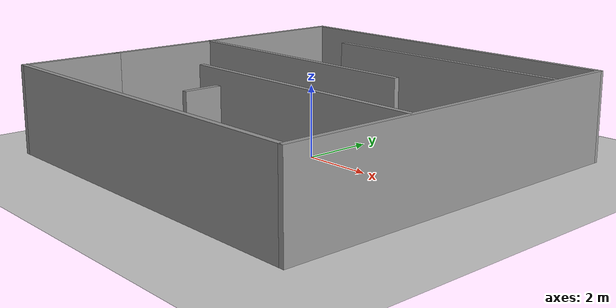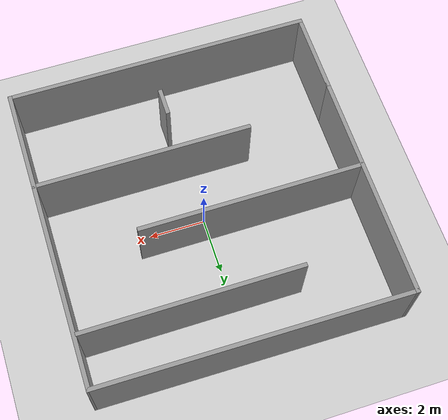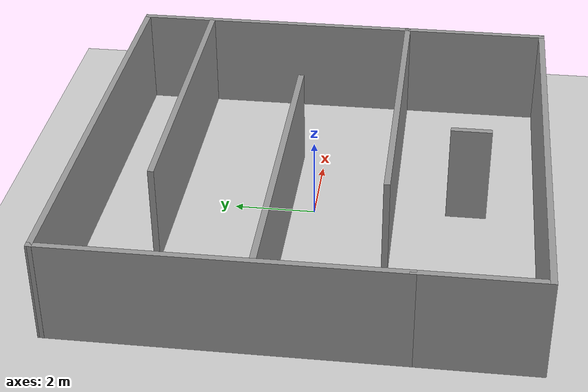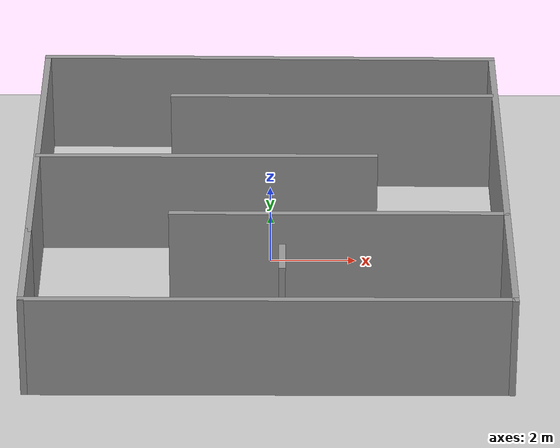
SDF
<sdf version="1.7">
 <world name="default">
  <light name="sun" type="directional">
   <pose>0 0 10 0 -0 0</pose>
   <diffuse>0.8 0.8 0.8 1</diffuse>
   <specular>0.1 0.1 0.1 1</specular>
   <attenuation>
    <range>1000</range>
    <constant>0.9</constant>
    <linear>0.01</linear>
    <quadratic>0.001</quadratic>
   </attenuation>
   <direction>-0.5 0.5 -1</direction>
   <spot><inner_angle>0</inner_angle><outer_angle>0</outer_angle><falloff>0</falloff></spot>
  </light>
  <model name="ground_plane">
   <static>1</static>
   <link name="link">
    <collision name="collision">
     <geometry><plane><normal>0 0 1</normal><size>100 100</size></plane></geometry>
     <surface><friction><ode><mu>100</mu><mu2>50</mu2></ode></friction></surface>
    </collision>
    <visual name="visual">
     <cast_shadows>0</cast_shadows>
     <geometry><plane><normal>0 0 1</normal><size>100 100</size></plane></geometry>
     <material>
      <script><uri>file://media/materials/scripts/gazebo.material</uri><name>Gazebo/Grey</name></script>
     </material>
    </visual>
   </link>
  </model>
  <gravity>0 0 -9.8</gravity>
  <magnetic_field>6e-06 2.3e-05 -4.2e-05</magnetic_field>
  <atmosphere type="adiabatic"/>
  <physics name="default_physics" default="0" type="ode">
   <max_step_size>0.001</max_step_size>
   <real_time_factor>1</real_time_factor>
   <real_time_update_rate>1000</real_time_update_rate>
  </physics>
  <scene><ambient>0.4 0.4 0.4 1</ambient><background>0.7 0.7 0.7 1</background><shadows>1</shadows></scene>
  <spherical_coordinates>
   <surface_model>EARTH_WGS84</surface_model>
   <latitude_deg>0</latitude_deg>
   <longitude_deg>0</longitude_deg>
   <elevation>0</elevation>
   <heading_deg>0</heading_deg>
  </spherical_coordinates>
  <model name="TD1">
   <pose>-0.035 -0.074655 0 0 -0 0</pose>
   <link name="Wall_0">
    <collision name="Wall_0_Collision">
     <geometry><box><size>3 0.15 2.5</size></box></geometry>
     <pose>0 0 1.25 0 -0 0</pose>
    </collision>
    <visual name="Wall_0_Visual">
     <pose>0 0 1.25 0 -0 0</pose>
     <geometry><box><size>3 0.15 2.5</size></box></geometry>
     <material>
      <script><uri>file://media/materials/scripts/gazebo.material</uri><name>Gazebo/Grey</name></script>
      <ambient>1 1 1 1</ambient>
     </material>
     <meta><layer>0</layer></meta>
    </visual>
    <pose>-5.425 -4.05035 0 0 -0 -1.5708</pose>
   </link>
   <link name="Wall_10">
    <collision name="Wall_10_Collision">
     <geometry><box><size>8 0.15 2.5</size></box></geometry>
     <pose>0 0 1.25 0 -0 0</pose>
    </collision>
    <visual name="Wall_10_Visual">
     <pose>0 0 1.25 0 -0 0</pose>
     <geometry><box><size>8 0.15 2.5</size></box></geometry>
     <material>
      <script><uri>file://media/materials/scripts/gazebo.material</uri><name>Gazebo/Grey</name></script>
      <ambient>1 1 1 1</ambient>
     </material>
     <meta><layer>0</layer></meta>
    </visual>
    <pose>-1.45764 0.71212 0 0 -0 0</pose>
   </link>
   <link name="Wall_12">
    <collision name="Wall_12_Collision">
     <geometry><box><size>7.75 0.15 2.5</size></box></geometry>
     <pose>0 0 1.25 0 -0 0</pose>
    </collision>
    <visual name="Wall_12_Visual">
     <pose>0 0 1.25 0 -0 0</pose>
     <geometry><box><size>7.75 0.15 2.5</size></box></geometry>
     <material>
      <script><uri>file://media/materials/scripts/gazebo.material</uri><name>Gazebo/Grey</name></script>
      <ambient>1 1 1 1</ambient>
     </material>
     <meta><layer>0</layer></meta>
    </visual>
    <pose>1.59623 -1.85538 0 0 -0 3.14159</pose>
   </link>
   <link name="Wall_14">
    <collision name="Wall_14_Collision">
     <geometry><box><size>1 0.15 2.5</size></box></geometry>
     <pose>0 0 1.25 0 -0 0</pose>
    </collision>
    <visual name="Wall_14_Visual">
     <pose>0 0 1.25 0 -0 0</pose>
     <geometry><box><size>1 0.15 2.5</size></box></geometry>
     <material>
      <script><uri>file://media/materials/scripts/gazebo.material</uri><name>Gazebo/Grey</name></script>
      <ambient>1 1 1 1</ambient>
     </material>
     <meta><layer>0</layer></meta>
    </visual>
    <pose>0.307494 -3.70117 0 0 -0 -1.5708</pose>
   </link>
   <link name="Wall_2">
    <collision name="Wall_2_Collision">
     <geometry><box><size>11 0.15 2.5</size></box></geometry>
     <pose>0 0 1.25 0 -0 0</pose>
    </collision>
    <visual name="Wall_2_Visual">
     <pose>0 0 1.25 0 -0 0</pose>
     <geometry><box><size>11 0.15 2.5</size></box></geometry>
     <material>
      <script><uri>file://media/materials/scripts/gazebo.material</uri><name>Gazebo/Grey</name></script>
      <ambient>1 1 1 1</ambient>
     </material>
     <meta><layer>0</layer></meta>
    </visual>
    <pose>-0 -5.47534 0 0 -0 0</pose>
   </link>
   <link name="Wall_3">
    <collision name="Wall_3_Collision">
     <geometry><box><size>11 0.15 2.5</size></box></geometry>
     <pose>0 0 1.25 0 -0 0</pose>
    </collision>
    <visual name="Wall_3_Visual">
     <pose>0 0 1.25 0 -0 0</pose>
     <geometry><box><size>11 0.15 2.5</size></box></geometry>
     <material>
      <script><uri>file://media/materials/scripts/gazebo.material</uri><name>Gazebo/Grey</name></script>
      <ambient>1 1 1 1</ambient>
     </material>
     <meta><layer>0</layer></meta>
    </visual>
    <pose>5.425 -0.050345 0 0 -0 1.5708</pose>
   </link>
   <link name="Wall_4">
    <collision name="Wall_4_Collision">
     <geometry><box><size>11.001 0.15 2.5</size></box></geometry>
     <pose>0 0 1.25 0 -0 0</pose>
    </collision>
    <visual name="Wall_4_Visual">
     <pose>0 0 1.25 0 -0 0</pose>
     <geometry><box><size>11.001 0.15 2.5</size></box></geometry>
     <material>
      <script><uri>file://media/materials/scripts/gazebo.material</uri><name>Gazebo/Grey</name></script>
      <ambient>1 1 1 1</ambient>
     </material>
     <meta><layer>0</layer></meta>
    </visual>
    <pose>-0 5.42465 0 0 -0 3.13238</pose>
   </link>
   <link name="Wall_5">
    <collision name="Wall_5_Collision">
     <geometry><box><size>8.25 0.15 2.5</size></box></geometry>
     <pose>0 0 1.25 0 -0 0</pose>
    </collision>
    <visual name="Wall_5_Visual">
     <pose>0 0 1.25 0 -0 0</pose>
     <geometry><box><size>8.25 0.15 2.5</size></box></geometry>
     <material>
      <script><uri>file://media/materials/scripts/gazebo.material</uri><name>Gazebo/Grey</name></script>
      <ambient>1 1 1 1</ambient>
     </material>
     <meta><layer>0</layer></meta>
    </visual>
    <pose>-5.425 1.42466 0 0 -0 -1.5708</pose>
   </link>
   <link name="Wall_8">
    <collision name="Wall_8_Collision">
     <geometry><box><size>7.75 0.15 2.5</size></box></geometry>
     <pose>0 0 1.25 0 -0 0</pose>
    </collision>
    <visual name="Wall_8_Visual">
     <pose>0 0 1.25 0 -0 0</pose>
     <geometry><box><size>7.75 0.15 2.5</size></box></geometry>
     <material>
      <script><uri>file://media/materials/scripts/gazebo.material</uri><name>Gazebo/Grey</name></script>
      <ambient>1 1 1 1</ambient>
     </material>
     <meta><layer>0</layer></meta>
    </visual>
    <pose>1.50371 3.55719 0 0 -0 3.14159</pose>
   </link>
   <static>1</static>
  </model>
 </world>
</sdf>
